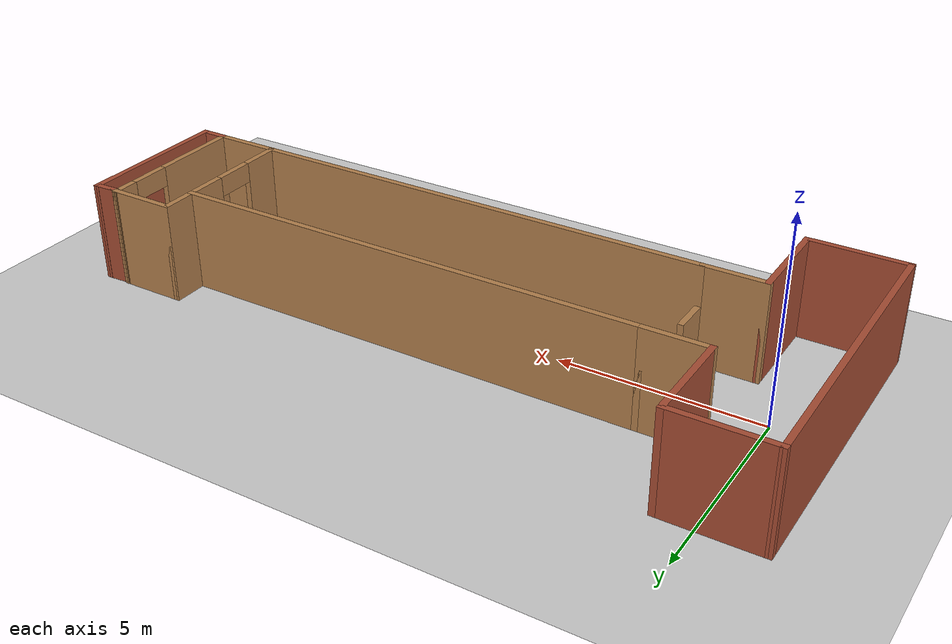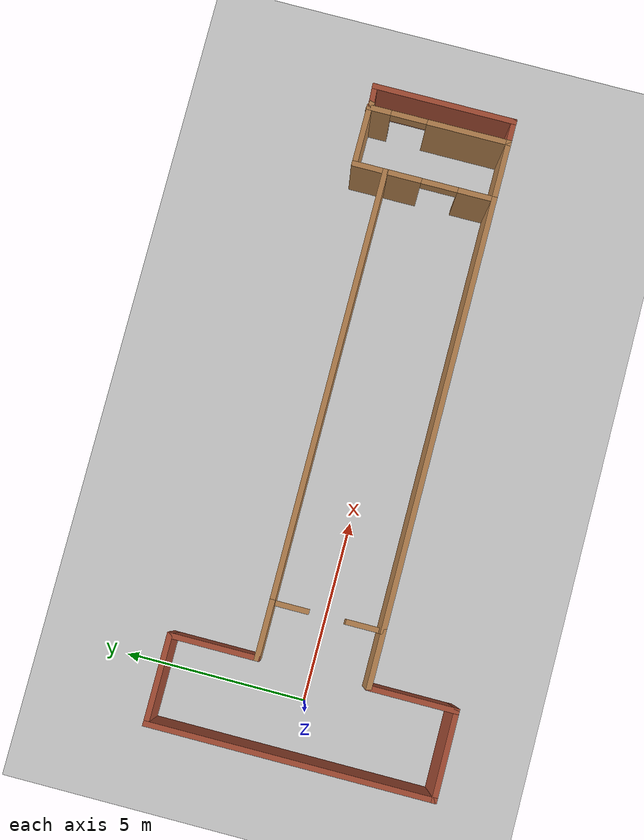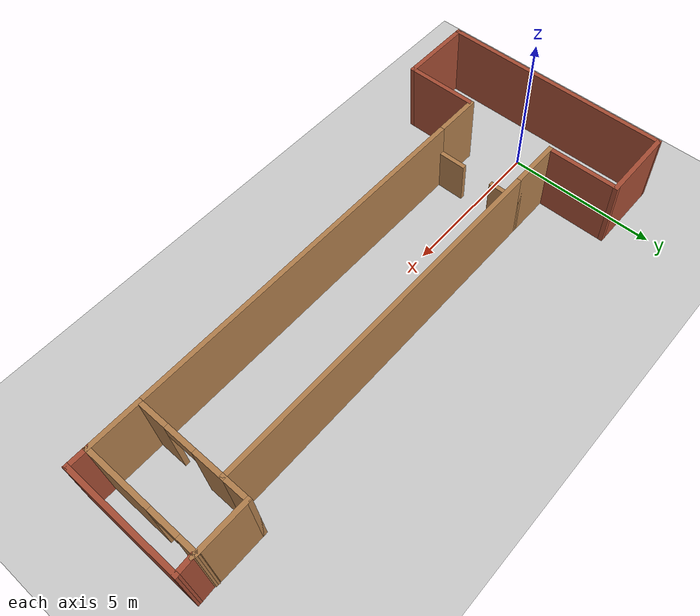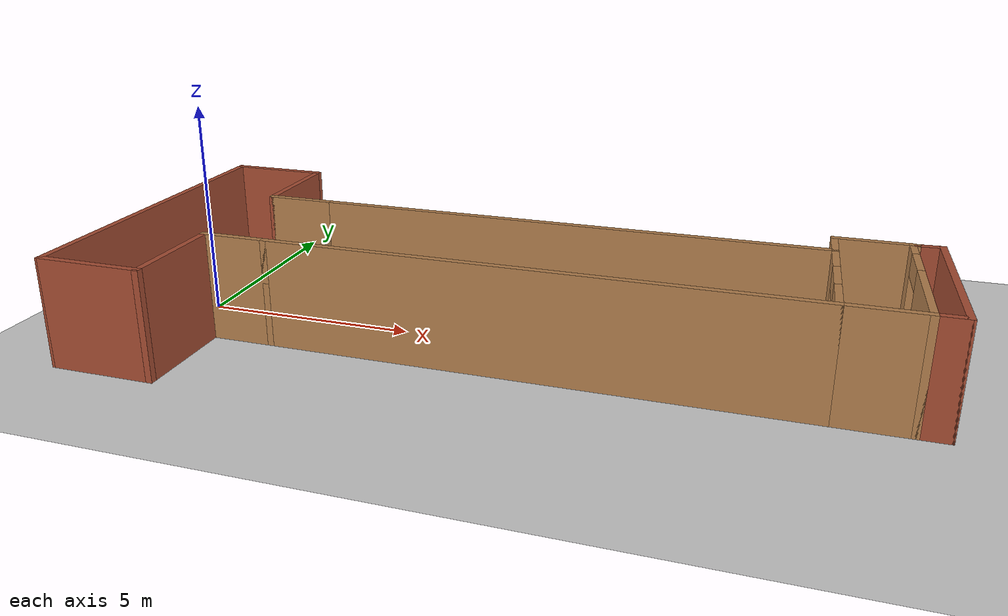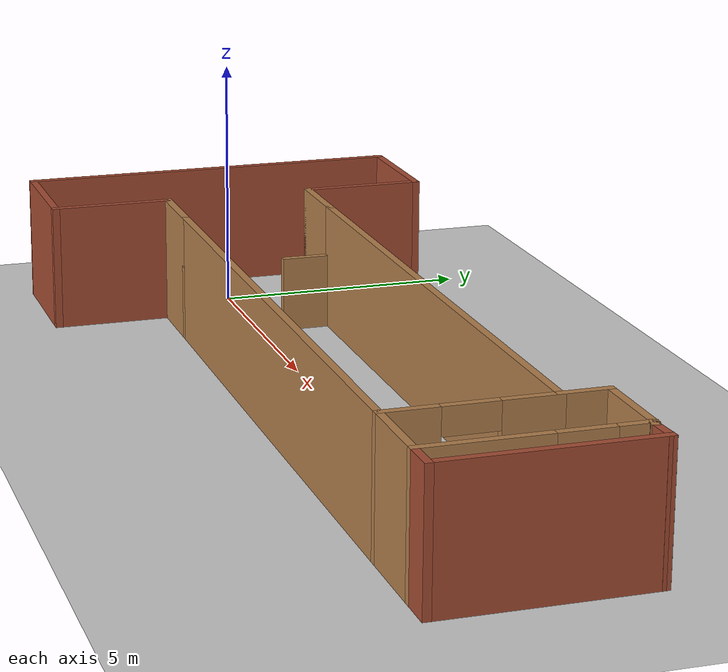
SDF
<sdf version="1.7">
 <world name="default">
  <light name="sun" type="directional">
   <pose>0 0 10 0 -0 0</pose>
   <diffuse>0.8 0.8 0.8 1</diffuse>
   <specular>0.2 0.2 0.2 1</specular>
   <attenuation>
    <range>1000</range>
    <constant>0.9</constant>
    <linear>0.01</linear>
    <quadratic>0.001</quadratic>
   </attenuation>
   <direction>-0.5 0.1 -0.9</direction>
   <spot><inner_angle>0</inner_angle><outer_angle>0</outer_angle><falloff>0</falloff></spot>
  </light>
  <model name="ground_plane">
   <static>1</static>
   <link name="link">
    <collision name="collision">
     <geometry><plane><normal>0 0 1</normal><size>100 100</size></plane></geometry>
     <surface><friction><ode><mu>100</mu><mu2>50</mu2></ode></friction></surface>
    </collision>
    <visual name="visual">
     <cast_shadows>0</cast_shadows>
     <geometry><plane><normal>0 0 1</normal><size>100 100</size></plane></geometry>
     <material>
      <script><uri>file://media/materials/scripts/gazebo.material</uri><name>Gazebo/Grey</name></script>
     </material>
    </visual>
   </link>
  </model>
  <gravity>0 0 -9.8</gravity>
  <magnetic_field>6e-06 2.3e-05 -4.2e-05</magnetic_field>
  <atmosphere type="adiabatic"/>
  <physics type="ode">
   <max_step_size>0.001</max_step_size>
   <real_time_factor>1</real_time_factor>
   <real_time_update_rate>1000</real_time_update_rate>
  </physics>
  <scene><ambient>0.4 0.4 0.4 1</ambient><background>0.7 0.7 0.7 1</background><shadows>1</shadows></scene>
  <audio><device>default</device></audio>
  <spherical_coordinates>
   <surface_model>EARTH_WGS84</surface_model>
   <latitude_deg>0</latitude_deg>
   <longitude_deg>0</longitude_deg>
   <elevation>0</elevation>
   <heading_deg>0</heading_deg>
  </spherical_coordinates>
  <model name="train">
   <pose>7.47071 0.004306 0 0 -0 0</pose>
   <link name="Wall_0">
    <pose>-5.10187 -0.0055 0 0 -0 1.5708</pose>
    <visual name="Wall_0_Visual_0">
     <pose>-1.04331 0 0.75 0 -0 0</pose>
     <geometry><box><size>1.06339 0.15 1.5</size></box></geometry>
     <material>
      <script><uri>file://media/materials/scripts/gazebo.material</uri><name>Gazebo/Wood</name></script>
      <ambient>1 1 1 1</ambient>
     </material>
     <meta><layer>0</layer></meta>
    </visual>
    <collision name="Wall_0_Collision_0">
     <geometry><box><size>1.06339 0.15 1.5</size></box></geometry>
     <pose>-1.04331 0 0.75 0 -0 0</pose>
    </collision>
    <visual name="Wall_0_Visual_1">
     <pose>1.03169 0 0.75 0 -0 0</pose>
     <geometry><box><size>1.08662 0.15 1.5</size></box></geometry>
     <material>
      <script><uri>file://media/materials/scripts/gazebo.material</uri><name>Gazebo/Wood</name></script>
      <ambient>1 1 1 1</ambient>
     </material>
     <meta><layer>0</layer></meta>
    </visual>
    <collision name="Wall_0_Collision_1">
     <geometry><box><size>1.08662 0.15 1.5</size></box></geometry>
     <pose>1.03169 0 0.75 0 -0 0</pose>
    </collision>
   </link>
   <link name="Wall_10">
    <collision name="Wall_10_Collision">
     <geometry><box><size>2.5 0.15 2.5</size></box></geometry>
     <pose>0 0 1.25 0 -0 0</pose>
    </collision>
    <visual name="Wall_10_Visual">
     <pose>0 0 1.25 0 -0 0</pose>
     <geometry><box><size>2.5 0.15 2.5</size></box></geometry>
     <material>
      <script><uri>file://media/materials/scripts/gazebo.material</uri><name>Gazebo/Bricks</name></script>
      <ambient>1 1 1 1</ambient>
     </material>
     <meta><layer>0</layer></meta>
    </visual>
    <pose>-7.77687 3.8445 0 0 -0 3.14159</pose>
   </link>
   <link name="Wall_11">
    <collision name="Wall_11_Collision">
     <geometry><box><size>7.839 0.15 2.5</size></box></geometry>
     <pose>0 0 1.25 0 -0 0</pose>
    </collision>
    <visual name="Wall_11_Visual">
     <pose>0 0 1.25 0 -0 0</pose>
     <geometry><box><size>7.839 0.15 2.5</size></box></geometry>
     <material>
      <script><uri>file://media/materials/scripts/gazebo.material</uri><name>Gazebo/Bricks</name></script>
      <ambient>1 1 1 1</ambient>
     </material>
     <meta><layer>0</layer></meta>
    </visual>
    <pose>-8.95137 -0 0 0 -0 -1.57067</pose>
   </link>
   <link name="Wall_13">
    <collision name="Wall_13_Collision">
     <geometry><box><size>12 0.15 2.5</size></box></geometry>
     <pose>0 0 1.25 0 -0 0</pose>
    </collision>
    <visual name="Wall_13_Visual">
     <pose>0 0 1.25 0 -0 0</pose>
     <geometry><box><size>12 0.15 2.5</size></box></geometry>
     <material>
      <script><uri>file://media/materials/scripts/gazebo.material</uri><name>Gazebo/Wood</name></script>
      <ambient>1 1 1 1</ambient>
     </material>
     <meta><layer>0</layer></meta>
    </visual>
    <pose>0.823129 1.4945 0 0 -0 0</pose>
   </link>
   <link name="Wall_15">
    <collision name="Wall_15_Collision">
     <geometry><box><size>12 0.15 2.5</size></box></geometry>
     <pose>0 0 1.25 0 -0 0</pose>
    </collision>
    <visual name="Wall_15_Visual">
     <pose>0 0 1.25 0 -0 0</pose>
     <geometry><box><size>12 0.15 2.5</size></box></geometry>
     <material>
      <script><uri>file://media/materials/scripts/gazebo.material</uri><name>Gazebo/Wood</name></script>
      <ambient>1 1 1 1</ambient>
     </material>
     <meta><layer>0</layer></meta>
    </visual>
    <pose>0.823129 -1.5055 0 0 -0 0</pose>
   </link>
   <link name="Wall_17">
    <pose>6.74813 -0.0055 0 0 -0 -1.5708</pose>
    <visual name="Wall_17_Visual_0">
     <pose>-1.0375 0 1.25 0 -0 0</pose>
     <geometry><box><size>1.075 0.15 2.5</size></box></geometry>
     <material>
      <script><uri>file://media/materials/scripts/gazebo.material</uri><name>Gazebo/Wood</name></script>
      <ambient>1 1 1 1</ambient>
     </material>
     <meta><layer>0</layer></meta>
    </visual>
    <collision name="Wall_17_Collision_0">
     <geometry><box><size>1.075 0.15 2.5</size></box></geometry>
     <pose>-1.0375 0 1.25 0 -0 0</pose>
    </collision>
    <visual name="Wall_17_Visual_1">
     <pose>1.0375 0 1.25 0 -0 0</pose>
     <geometry><box><size>1.075 0.15 2.5</size></box></geometry>
     <material>
      <script><uri>file://media/materials/scripts/gazebo.material</uri><name>Gazebo/Wood</name></script>
      <ambient>1 1 1 1</ambient>
     </material>
     <meta><layer>0</layer></meta>
    </visual>
    <collision name="Wall_17_Collision_1">
     <geometry><box><size>1.075 0.15 2.5</size></box></geometry>
     <pose>1.0375 0 1.25 0 -0 0</pose>
    </collision>
    <visual name="Wall_17_Visual_2">
     <pose>-0 0 2.25 0 -0 0</pose>
     <geometry><box><size>1 0.15 0.5</size></box></geometry>
     <material>
      <script><uri>file://media/materials/scripts/gazebo.material</uri><name>Gazebo/Wood</name></script>
      <ambient>1 1 1 1</ambient>
     </material>
     <meta><layer>0</layer></meta>
    </visual>
    <collision name="Wall_17_Collision_2">
     <geometry><box><size>1 0.15 0.5</size></box></geometry>
     <pose>-0 0 2.25 0 -0 0</pose>
    </collision>
   </link>
   <link name="Wall_3">
    <collision name="Wall_3_Collision">
     <geometry><box><size>1.65 0.15 2.5</size></box></geometry>
     <pose>0 0 1.25 0 -0 0</pose>
    </collision>
    <visual name="Wall_3_Visual">
     <pose>0 0 1.25 0 -0 0</pose>
     <geometry><box><size>1.65 0.15 2.5</size></box></geometry>
     <material>
      <script><uri>file://media/materials/scripts/gazebo.material</uri><name>Gazebo/Wood</name></script>
      <ambient>1 1 1 1</ambient>
     </material>
     <meta><layer>0</layer></meta>
    </visual>
    <pose>-5.85187 1.4945 0 0 -0 0</pose>
   </link>
   <link name="Wall_30">
    <collision name="Wall_30_Collision">
     <geometry><box><size>1 0.15 2.5</size></box></geometry>
     <pose>0 0 1.25 0 -0 0</pose>
    </collision>
    <visual name="Wall_30_Visual">
     <pose>0 0 1.25 0 -0 0</pose>
     <geometry><box><size>1 0.15 2.5</size></box></geometry>
     <material>
      <script><uri>file://media/materials/scripts/gazebo.material</uri><name>Gazebo/Wood</name></script>
      <ambient>1 1 1 1</ambient>
     </material>
     <meta><layer>0</layer></meta>
    </visual>
    <pose>6.74813 1.9195 0 0 -0 1.5708</pose>
   </link>
   <link name="Wall_31">
    <collision name="Wall_31_Collision">
     <geometry><box><size>1.75 0.15 2.5</size></box></geometry>
     <pose>0 0 1.25 0 -0 0</pose>
    </collision>
    <visual name="Wall_31_Visual">
     <pose>0 0 1.25 0 -0 0</pose>
     <geometry><box><size>1.75 0.15 2.5</size></box></geometry>
     <material>
      <script><uri>file://media/materials/scripts/gazebo.material</uri><name>Gazebo/Wood</name></script>
      <ambient>1 1 1 1</ambient>
     </material>
     <meta><layer>0</layer></meta>
    </visual>
    <pose>7.54813 2.3445 0 0 -0 0</pose>
   </link>
   <link name="Wall_33">
    <pose>8.34813 0.4195 0 0 -0 -1.5708</pose>
    <visual name="Wall_33_Visual_0">
     <pose>-1.66322 0 1.25 0 -0 0</pose>
     <geometry><box><size>0.673565 0.15 2.5</size></box></geometry>
     <material>
      <script><uri>file://media/materials/scripts/gazebo.material</uri><name>Gazebo/Wood</name></script>
      <ambient>1 1 1 1</ambient>
     </material>
     <meta><layer>0</layer></meta>
    </visual>
    <collision name="Wall_33_Collision_0">
     <geometry><box><size>0.673565 0.15 2.5</size></box></geometry>
     <pose>-1.66322 0 1.25 0 -0 0</pose>
    </collision>
    <visual name="Wall_33_Visual_1">
     <pose>0.836783 0 1.25 0 -0 0</pose>
     <geometry><box><size>2.32644 0.15 2.5</size></box></geometry>
     <material>
      <script><uri>file://media/materials/scripts/gazebo.material</uri><name>Gazebo/Wood</name></script>
      <ambient>1 1 1 1</ambient>
     </material>
     <meta><layer>0</layer></meta>
    </visual>
    <collision name="Wall_33_Collision_1">
     <geometry><box><size>2.32644 0.15 2.5</size></box></geometry>
     <pose>0.836783 0 1.25 0 -0 0</pose>
    </collision>
    <visual name="Wall_33_Visual_2">
     <pose>-0.826435 0 2.25 0 -0 0</pose>
     <geometry><box><size>1 0.15 0.5</size></box></geometry>
     <material>
      <script><uri>file://media/materials/scripts/gazebo.material</uri><name>Gazebo/Wood</name></script>
      <ambient>1 1 1 1</ambient>
     </material>
     <meta><layer>0</layer></meta>
    </visual>
    <collision name="Wall_33_Collision_2">
     <geometry><box><size>1 0.15 0.5</size></box></geometry>
     <pose>-0.826435 0 2.25 0 -0 0</pose>
    </collision>
   </link>
   <link name="Wall_34">
    <collision name="Wall_34_Collision">
     <geometry><box><size>1.75 0.15 2.5</size></box></geometry>
     <pose>0 0 1.25 0 -0 0</pose>
    </collision>
    <visual name="Wall_34_Visual">
     <pose>0 0 1.25 0 -0 0</pose>
     <geometry><box><size>1.75 0.15 2.5</size></box></geometry>
     <material>
      <script><uri>file://media/materials/scripts/gazebo.material</uri><name>Gazebo/Wood</name></script>
      <ambient>1 1 1 1</ambient>
     </material>
     <meta><layer>0</layer></meta>
    </visual>
    <pose>7.54813 -1.5055 0 0 -0 3.14159</pose>
   </link>
   <link name="Wall_36">
    <collision name="Wall_36_Collision">
     <geometry><box><size>0.25 0.15 2.5</size></box></geometry>
     <pose>0 0 1.25 0 -0 0</pose>
    </collision>
    <visual name="Wall_36_Visual">
     <pose>0 0 1.25 0 -0 0</pose>
     <geometry><box><size>0.25 0.15 2.5</size></box></geometry>
     <material>
      <script><uri>file://media/materials/scripts/gazebo.material</uri><name>Gazebo/Wood</name></script>
      <ambient>1 1 1 1</ambient>
     </material>
     <meta><layer>0</layer></meta>
    </visual>
    <pose>8.39643 2.33156 0 0 -0 -0.261799</pose>
   </link>
   <link name="Wall_37">
    <collision name="Wall_37_Collision">
     <geometry><box><size>0.654072 0.15 2.5</size></box></geometry>
     <pose>0 0 1.25 0 -0 0</pose>
    </collision>
    <visual name="Wall_37_Visual">
     <pose>0 0 1.25 0 -0 0</pose>
     <geometry><box><size>0.654072 0.15 2.5</size></box></geometry>
     <material>
      <script><uri>file://media/materials/scripts/gazebo.material</uri><name>Gazebo/Bricks</name></script>
      <ambient>1 1 1 1</ambient>
     </material>
     <meta><layer>0</layer></meta>
    </visual>
    <pose>8.69642 2.33156 0 0 -0 0.051368</pose>
   </link>
   <link name="Wall_38">
    <collision name="Wall_38_Collision">
     <geometry><box><size>4 0.15 2.5</size></box></geometry>
     <pose>0 0 1.25 0 -0 0</pose>
    </collision>
    <visual name="Wall_38_Visual">
     <pose>0 0 1.25 0 -0 0</pose>
     <geometry><box><size>4 0.15 2.5</size></box></geometry>
     <material>
      <script><uri>file://media/materials/scripts/gazebo.material</uri><name>Gazebo/Bricks</name></script>
      <ambient>1 1 1 1</ambient>
     </material>
     <meta><layer>0</layer></meta>
    </visual>
    <pose>8.94813 0.4195 0 0 -0 -1.5708</pose>
   </link>
   <link name="Wall_39">
    <collision name="Wall_39_Collision">
     <geometry><box><size>0.75 0.15 2.5</size></box></geometry>
     <pose>0 0 1.25 0 -0 0</pose>
    </collision>
    <visual name="Wall_39_Visual">
     <pose>0 0 1.25 0 -0 0</pose>
     <geometry><box><size>0.75 0.15 2.5</size></box></geometry>
     <material>
      <script><uri>file://media/materials/scripts/gazebo.material</uri><name>Gazebo/Bricks</name></script>
      <ambient>1 1 1 1</ambient>
     </material>
     <meta><layer>0</layer></meta>
    </visual>
    <pose>8.64813 -1.5055 0 0 -0 3.14159</pose>
   </link>
   <link name="Wall_5">
    <collision name="Wall_5_Collision">
     <geometry><box><size>1.65 0.15 2.5</size></box></geometry>
     <pose>0 0 1.25 0 -0 0</pose>
    </collision>
    <visual name="Wall_5_Visual">
     <pose>0 0 1.25 0 -0 0</pose>
     <geometry><box><size>1.65 0.15 2.5</size></box></geometry>
     <material>
      <script><uri>file://media/materials/scripts/gazebo.material</uri><name>Gazebo/Wood</name></script>
      <ambient>1 1 1 1</ambient>
     </material>
     <meta><layer>0</layer></meta>
    </visual>
    <pose>-5.85187 -1.5055 0 0 -0 3.14159</pose>
   </link>
   <link name="Wall_6">
    <collision name="Wall_6_Collision">
     <geometry><box><size>2.489 0.15 2.5</size></box></geometry>
     <pose>0 0 1.25 0 -0 0</pose>
    </collision>
    <visual name="Wall_6_Visual">
     <pose>0 0 1.25 0 -0 0</pose>
     <geometry><box><size>2.489 0.15 2.5</size></box></geometry>
     <material>
      <script><uri>file://media/materials/scripts/gazebo.material</uri><name>Gazebo/Bricks</name></script>
      <ambient>1 1 1 1</ambient>
     </material>
     <meta><layer>0</layer></meta>
    </visual>
    <pose>-6.60187 -2.675 0 0 -0 -1.5708</pose>
   </link>
   <link name="Wall_7">
    <collision name="Wall_7_Collision">
     <geometry><box><size>2.49903 0.15 2.5</size></box></geometry>
     <pose>0 0 1.25 0 -0 0</pose>
    </collision>
    <visual name="Wall_7_Visual">
     <pose>0 0 1.25 0 -0 0</pose>
     <geometry><box><size>2.49903 0.15 2.5</size></box></geometry>
     <material>
      <script><uri>file://media/materials/scripts/gazebo.material</uri><name>Gazebo/Bricks</name></script>
      <ambient>1 1 1 1</ambient>
     </material>
     <meta><layer>0</layer></meta>
    </visual>
    <pose>-7.77637 -3.8445 0 0 -0 -3.14159</pose>
   </link>
   <link name="Wall_9">
    <collision name="Wall_9_Collision">
     <geometry><box><size>2.5 0.15 2.5</size></box></geometry>
     <pose>0 0 1.25 0 -0 0</pose>
    </collision>
    <visual name="Wall_9_Visual">
     <pose>0 0 1.25 0 -0 0</pose>
     <geometry><box><size>2.5 0.15 2.5</size></box></geometry>
     <material>
      <script><uri>file://media/materials/scripts/gazebo.material</uri><name>Gazebo/Bricks</name></script>
      <ambient>1 1 1 1</ambient>
     </material>
     <meta><layer>0</layer></meta>
    </visual>
    <pose>-6.60187 2.6695 0 0 -0 1.5708</pose>
   </link>
   <static>1</static>
  </model>
 </world>
</sdf>
